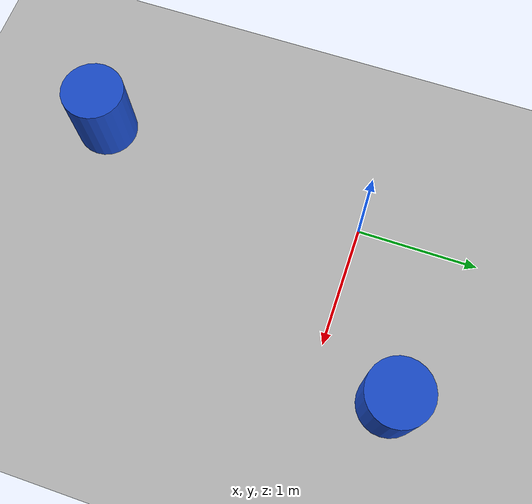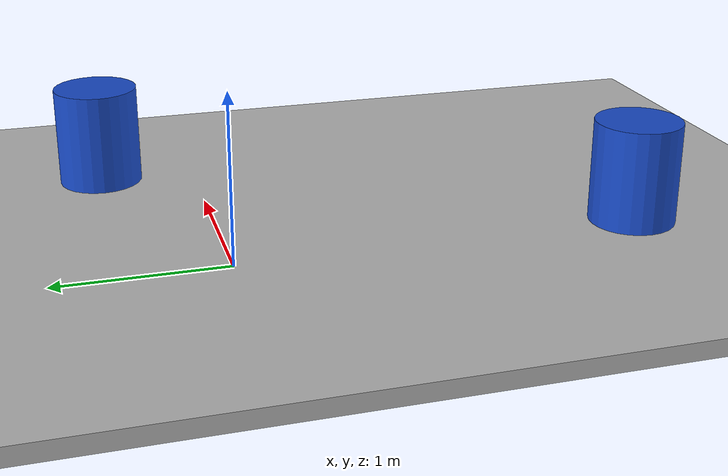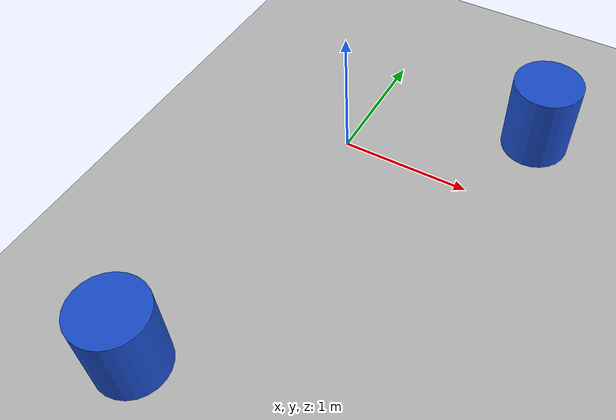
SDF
<?xml version="1.0" ?>
<sdf version="1.6">
  <world name="straight_lane_obstacles1">

    <physics type="ode">
      <max_step_size>0.001</max_step_size>
      <real_time_update_rate>1000</real_time_update_rate>
    </physics>

    <!-- Sun -->
    <light type="directional" name="sun">
      <cast_shadows>true</cast_shadows>
      <pose>0 0 10 0 0 0</pose>
      <diffuse>1 1 1 1</diffuse>
      <specular>0.2 0.2 0.2 1</specular>
      <direction>-0.5 0.1 -0.9</direction>
    </light>

    <!-- Static Floor -->
    <include>
      <uri>model://floor</uri>
      <pose>0 0 0 0 0 0</pose>
    </include>

    <gui fullscreen='0'>
      <camera name='user_camera'>
        <pose>-1.8 14.4 8.6 0.0 0.545 -1.65</pose>
        <view_controller>orbit</view_controller>
      </camera>
    </gui>

    <!-- Obstacles -->
    <include>
      <uri>model://barrel</uri>
      <name>barrel_1</name>
      <pose>1.3 0.6 0.1 0 0 0</pose>
    </include>

    <include>
      <uri>model://barrel</uri>
      <name>barrel_2</name>
      <pose>-0.2 -2.3 0.1 0 0 0</pose>
    </include>

  </world>
</sdf>

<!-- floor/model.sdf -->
<sdf version="1.6">
  <model name="custom_course">
    <static>true</static>
    <link name="link">
      <collision name="collision">
        <geometry>
          <box>
            <size>20 20 0.1</size> <!-- 20m x 20m wide, 10cm thick -->
          </box>
        </geometry>
      </collision>
      <visual name="visual">
        <geometry>
          <box>
            <size>20 20 0.1</size>
          </box>
        </geometry>
        <material>
          <script>
            <uri>model://floor/materials/scripts</uri>
            <uri>model://floor/materials/textures</uri>
            <name>CustomCourse/Diffuse</name>
          </script>
        </material>
      </visual>
    </link>
  </model>
</sdf>

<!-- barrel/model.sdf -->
<sdf version="1.8">
  <model name="barrel">
    <static>true</static>
    <link name="link">
      <collision name="collision">
        <geometry>
          <cylinder>
            <radius>0.25</radius>
            <length>0.6</length>
          </cylinder>
        </geometry>
        <pose>0 0 0.3 0 0 0</pose>
      </collision>
      <visual name="visual">
        <geometry>
          <cylinder>
            <radius>0.25</radius>
            <length>0.6</length>
          </cylinder>
        </geometry>
        <pose>0 0 0.3 0 0 0</pose>
        <material>
          <ambient>0.1 0.3 0.8 1</ambient>
          <diffuse>0.1 0.3 0.8 1</diffuse>
          <specular>0.3 0.3 0.3 1</specular>
        </material>
      </visual>
    </link>
  </model>
</sdf>
